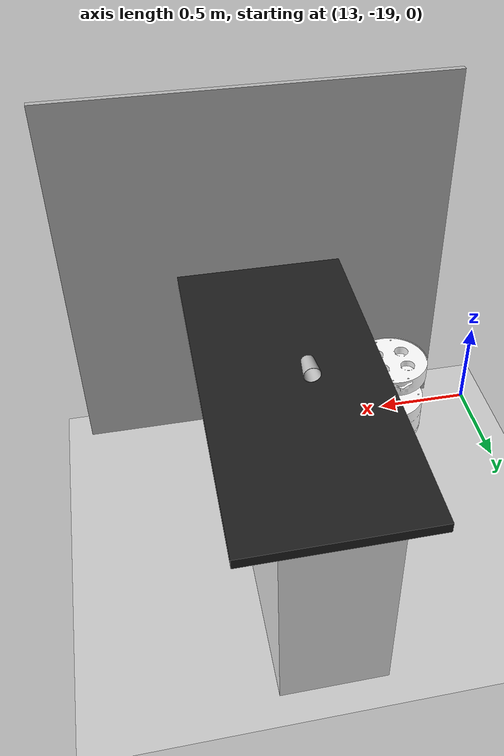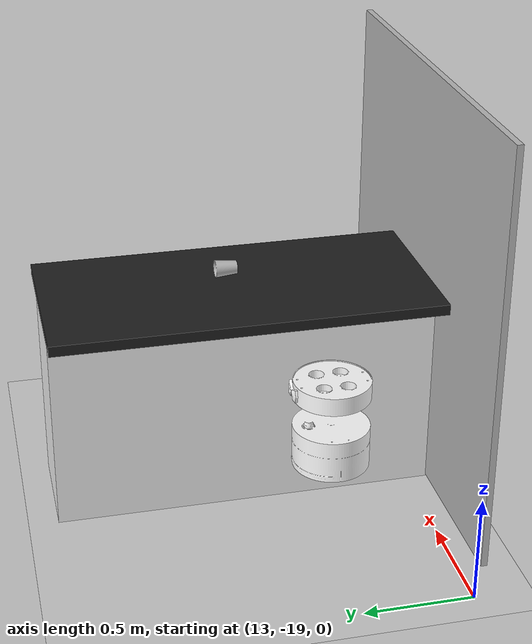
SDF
<sdf version="1.7">
 <world name="world">
  <scene><ambient>0.8 0.8 0.8 1.0</ambient><background>0 0 0</background><grid>false</grid></scene>
  <include><uri>model://sun</uri></include>
  <include><uri>model://ground_plane</uri></include>
  <model name="starbots_bartender_dispenser">
   <static>1</static>
   <include><uri>model://starbots_bartender_dispenser</uri></include>
   <pose>14.2 -18.2 0.5 0 0 0</pose>
  </model>
  <model name="portable_cup_2">
   <static>0</static>
   <include><uri>model://portable_cup_2</uri></include>
   <pose>14.102792 -18.197034 1.1 0 0 0</pose>
  </model>
  <model name="barista_model">
   <static>1</static>
   <include><uri>model://barista_model</uri></include>
   <pose>13.64 -18.52 0.4 0 0 1.57</pose>
  </model>
  <model name="wall">
   <static>1</static>
   <include><uri>model://wall</uri></include>
   <pose>14.2 -19.12 1 0 0 0</pose>
  </model>
 </world>
</sdf>

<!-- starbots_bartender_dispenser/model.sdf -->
<sdf version='1.7'>
  <model name="starbots_bartender_dispenser">
      <static>1</static>
      <link name='countertop'>
        <inertial>
          <mass>50.25</mass>
          <inertia>
            <ixx>0.00015</ixx>
            <ixy>0.000000</ixy>
            <ixz>0.000000</ixz>
            <iyy>0.00015</iyy>
            <iyz>0.000000</iyz>
            <izz>0.00015</izz>
          </inertia>
        </inertial>
        <collision name='countertop_c'>
          <geometry>
            <box>
              <size>0.5 1.8 1.0</size>
            </box>
          </geometry>
          <laser_retro>8000</laser_retro>
          <surface>
            <friction>
              <ode>
                <mu>30.0</mu>
                <mu2>30.0</mu2>
              </ode>
            </friction>
            <contact>
              <ode>
                <kp>1000000.0</kp>
                <kd>100.0</kd>
                <max_vel>1.0</max_vel>
                <min_depth>0.002</min_depth>
              </ode>
            </contact>
          </surface>
        </collision>
        <visual name='countertop_v'>
          <geometry>
            <box>
              <size>0.5 1.8 1.0</size>
            </box>
          </geometry>
          <material>
            <script>
              <uri>file://media/materials/scripts/gazebo.material</uri>
              <name>Gazebo/White</name>
            </script>
          </material>
        </visual>
        <collision name='top_c'>
          <pose>0 0 0.5 0 0 0</pose>

          <geometry>
            <box>
              <size>0.85 1.81 0.05</size>
            </box>
          </geometry>
          <laser_retro>8000</laser_retro>
          <surface>
            <friction>
              <ode>
                <mu>30.0</mu>
                <mu2>30.0</mu2>
              </ode>
            </friction>
            <contact>
              <ode>
                <kp>1000000.0</kp>
                <kd>100.0</kd>
                <max_vel>1.0</max_vel>
                <min_depth>0.002</min_depth>
              </ode>
            </contact>
          </surface>
        </collision>
        <visual name='top_v'>
          <pose>0 0 0.5 0 0 0</pose>

          <geometry>
            <box>
              <size>0.85 1.81 0.05</size>
            </box>
          </geometry>
          <material>
            <script>
              <uri>file://media/materials/scripts/gazebo.material</uri>
              <name>Gazebo/Black</name>
            </script>
          </material>
        </visual>

        <velocity_decay>
          <linear>0.000000</linear>
          <angular>0.000000</angular>
        </velocity_decay>
        <self_collide>0</self_collide>
        <kinematic>0</kinematic>
        <gravity>1</gravity>
      </link>

  </model>
</sdf>

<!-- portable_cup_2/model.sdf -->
<sdf version="1.5">
  <model name="portable_cup_2">
    <static>false</static>
    <link name="link">
      <inertial>
        <pose>0.04 0.05 0.04 0 -0 0</pose>
        <mass>0.1</mass>
        <inertia>
          <ixx>0.00013667</ixx>
          <ixy>0</ixy>
          <ixz>0</ixz>
          <iyy>0.00010667</iyy>
          <iyz>0</iyz>
          <izz>0.00013667</izz>
        </inertia>
      </inertial>

      <collision name="col_portable_cup_2">
        <pose>0 0 0 0 0 0</pose>
        <geometry>
            <mesh>
                <uri>model://portable_cup_2/meshes/coffee.STL</uri>
            </mesh>
        </geometry>
        <surface>
          <friction>
            <ode>
              <mu>0.01</mu>
              <mu2>0.01</mu2>
            </ode>
          </friction>
          <contact>
            <ode>
              <kp>10000000.0</kp>
              <kd>10000000.0</kd>
              <min_depth>0.001</min_depth>
              <max_vel>1.1</max_vel>
            </ode>
          </contact>
        </surface>
      </collision>

      <visual name="visual_portable_cup_2">
        <pose>0 0 0 0 0 0</pose>
        <geometry>
          <mesh>
            <uri>model://portable_cup_2/meshes/coffee.STL</uri>

          </mesh>
        </geometry>
      </visual>
    </link>

  </model>
</sdf>

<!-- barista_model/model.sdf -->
<sdf version="1.8">
  <model name="test">
    <link name="testlink">
      <visual name="TOP">
        <geometry>
          <mesh>
            <uri>model.dae</uri>
            <submesh>
              <name>TOP</name>
            </submesh>
          </mesh>
        </geometry>
        <material>
          <diffuse>1.0 1.0 1.0 1.0</diffuse>
          <specular>0.0 0.0 0.0 1.0</specular>
          <pbr>
            <metal/>
          </pbr>
        </material>
      </visual>
      <visual name="Cube">
        <geometry>
          <mesh>
            <uri>model.dae</uri>
            <submesh>
              <name>Cube</name>
            </submesh>
          </mesh>
        </geometry>
        <material>
          <diffuse>1.0 1.0 1.0 1.0</diffuse>
          <specular>0.0 0.0 0.0 1.0</specular>
          <pbr>
            <metal/>
          </pbr>
        </material>
      </visual>
      <visual name="BOTTOM">
        <geometry>
          <mesh>
            <uri>model.dae</uri>
            <submesh>
              <name>BOTTOM</name>
            </submesh>
          </mesh>
        </geometry>
        <material>
          <diffuse>1.0 1.0 1.0 1.0</diffuse>
          <specular>0.0 0.0 0.0 1.0</specular>
          <pbr>
            <metal/>
          </pbr>
        </material>
      </visual>
      <visual name="main_body">
        <geometry>
          <mesh>
            <uri>model.dae</uri>
            <submesh>
              <name>main_body</name>
            </submesh>
          </mesh>
        </geometry>
        <material>
          <diffuse>1.0 1.0 1.0 1.0</diffuse>
          <specular>0.0 0.0 0.0 1.0</specular>
          <pbr>
            <metal>
              <albedo_map>meshes/main_body.jpg</albedo_map>
            </metal>
          </pbr>
        </material>
      </visual>
      <visual name="Mesh_001">
        <geometry>
          <mesh>
            <uri>model.dae</uri>
            <submesh>
              <name>Mesh_001</name>
            </submesh>
          </mesh>
        </geometry>
        <material>
          <diffuse>1.0 1.0 1.0 1.0</diffuse>
          <specular>0.0 0.0 0.0 1.0</specular>
          <pbr>
            <metal/>
          </pbr>
        </material>
      </visual>
      <light name="Lamp" type="point">
        <diffuse>1.0 1.0 1.0 1.0</diffuse>
        <attenuation>
          <range>40.0</range>
          <linear>0.0</linear>
          <quadratic>0.0</quadratic>
          <constant>1.0</constant>
        </attenuation>
        <cast_shadows>true</cast_shadows>
        <intensity>1.0</intensity>
      </light>
      <collision name="collision">
        <geometry>
          <mesh>
            <uri>model.dae</uri>
          </mesh>
        </geometry>
        <surface/>
        <contact/>
        <collide_bitmask>0x01</collide_bitmask>
      </collision>
    </link>
  </model>
  <static>true</static>
</sdf>

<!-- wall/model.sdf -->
<sdf version="1.4">
  <model name="wall">
    <static>true</static>
    <link name="link">
      <inertial>
        <mass>1.0</mass>
        <inertia> <!-- inertias are tricky to compute -->
          <!-- http://gazebosim.org/tutorials?tut=inertia&cat=build_robot -->
          <ixx>0.083</ixx>       <!-- for a box: ixx = 0.083 * mass * (y*y + z*z) -->
          <ixy>0.0</ixy>         <!-- for a box: ixy = 0 -->
          <ixz>0.0</ixz>         <!-- for a box: ixz = 0 -->
          <iyy>0.083</iyy>       <!-- for a box: iyy = 0.083 * mass * (x*x + z*z) -->
          <iyz>0.0</iyz>         <!-- for a box: iyz = 0 -->
          <izz>0.083</izz>       <!-- for a box: izz = 0.083 * mass * (x*x + y*y) -->
        </inertia>
      </inertial>
      <collision name="collision">
        <geometry>
          <box>
            <size> 2 0.03 2</size>
          </box>
        </geometry>
      </collision>
      <visual name="visual">
        <geometry>
          <box>
            <size>2 0.03 2</size>
          </box>
        </geometry>
      </visual>
    </link>
  </model>
</sdf>
